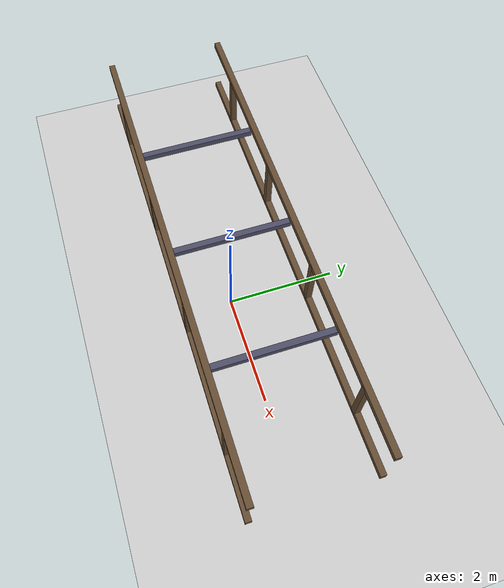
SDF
<?xml version="1.0" encoding="UTF-8"?>
<sdf version="1.9">
  <world name="truss">
    <physics type="ode">
      <max_step_size>0.004</max_step_size>
      <real_time_factor>1.0</real_time_factor>
      <real_time_update_rate>250</real_time_update_rate>
    </physics>

    <plugin filename="gz-sim-physics-system" name="gz::sim::systems::Physics">
      <engine><filename>gz-physics-dartsim-plugin</filename></engine>
    </plugin>
    <plugin filename="gz-sim-navsat-system" name="gz::sim::systems::NavSat"/>
    <plugin filename="gz-sim-scene-broadcaster-system" name="gz::sim::systems::SceneBroadcaster"/>
    <plugin filename="gz-sim-user-commands-system" name="gz::sim::systems::UserCommands"/>
    <plugin filename="gz-sim-sensors-system" name="gz::sim::systems::Sensors">
      <render_engine>ogre2</render_engine>
    </plugin>
    <plugin filename="gz-sim-imu-system" name="gz::sim::systems::Imu"/>
    <plugin filename="gz-sim-magnetometer-system" name="gz::sim::systems::Magnetometer"/>
    <plugin filename="gz-sim-air-pressure-system" name="gz::sim::systems::AirPressure"/>

    <gravity>0 0 -9.8</gravity>
    <magnetic_field>6e-06 2.3e-05 -4.2e-05</magnetic_field>
    <atmosphere type="adiabatic"/>
    <scene>
      <grid>false</grid>
      <ambient>0.4 0.4 0.4 1</ambient>
      <background>0.7 0.7 0.7 1</background>
      <shadows>true</shadows>
    </scene>

    <model name="ground_plane">
      <static>true</static>
      <link name="link">
        <collision name="collision">
          <geometry>
            <plane><normal>0 0 1</normal><size>1 1</size></plane>
          </geometry>
        </collision>
        <visual name="visual">
          <geometry>
            <plane><normal>0 0 1</normal><size>500 500</size></plane>
          </geometry>
          <material>
            <ambient>0.8 0.8 0.8 1</ambient>
            <diffuse>0.8 0.8 0.8 1</diffuse>
            <specular>0.8 0.8 0.8 1</specular>
          </material>
        </visual>
      </link>
    </model>

    <!-- CEILING TRUSS STRUCTURE -->
    <!-- Top chord - left rail running along X axis -->
    <model name="top_chord_left">
      <static>true</static>
      <pose>0 -1.0 2.5 0 0 0</pose>
      <link name="link">
        <collision name="collision"><geometry><box><size>8.0 0.1 0.1</size></box></geometry></collision>
        <visual name="visual"><geometry><box><size>8.0 0.1 0.1</size></box></geometry>
          <material><ambient>0.4 0.3 0.2 1</ambient><diffuse>0.4 0.3 0.2 1</diffuse></material>
        </visual>
      </link>
    </model>

    <!-- Top chord - right rail -->
    <model name="top_chord_right">
      <static>true</static>
      <pose>0 1.0 2.5 0 0 0</pose>
      <link name="link">
        <collision name="collision"><geometry><box><size>8.0 0.1 0.1</size></box></geometry></collision>
        <visual name="visual"><geometry><box><size>8.0 0.1 0.1</size></box></geometry>
          <material><ambient>0.4 0.3 0.2 1</ambient><diffuse>0.4 0.3 0.2 1</diffuse></material>
        </visual>
      </link>
    </model>

    <!-- Vertical posts every 2m along X -->
    <model name="post_1_left">
      <static>true</static>
      <pose>-3.0 -1.0 2.0 0 0 0</pose>
      <link name="link">
        <collision name="collision"><geometry><box><size>0.1 0.1 1.0</size></box></geometry></collision>
        <visual name="visual"><geometry><box><size>0.1 0.1 1.0</size></box></geometry>
          <material><ambient>0.4 0.3 0.2 1</ambient><diffuse>0.4 0.3 0.2 1</diffuse></material>
        </visual>
      </link>
    </model>
    <model name="post_1_right">
      <static>true</static>
      <pose>-3.0 1.0 2.0 0 0 0</pose>
      <link name="link">
        <collision name="collision"><geometry><box><size>0.1 0.1 1.0</size></box></geometry></collision>
        <visual name="visual"><geometry><box><size>0.1 0.1 1.0</size></box></geometry>
          <material><ambient>0.4 0.3 0.2 1</ambient><diffuse>0.4 0.3 0.2 1</diffuse></material>
        </visual>
      </link>
    </model>

    <model name="post_2_left">
      <static>true</static>
      <pose>-1.0 -1.0 2.0 0 0 0</pose>
      <link name="link">
        <collision name="collision"><geometry><box><size>0.1 0.1 1.0</size></box></geometry></collision>
        <visual name="visual"><geometry><box><size>0.1 0.1 1.0</size></box></geometry>
          <material><ambient>0.4 0.3 0.2 1</ambient><diffuse>0.4 0.3 0.2 1</diffuse></material>
        </visual>
      </link>
    </model>
    <model name="post_2_right">
      <static>true</static>
      <pose>-1.0 1.0 2.0 0 0 0</pose>
      <link name="link">
        <collision name="collision"><geometry><box><size>0.1 0.1 1.0</size></box></geometry></collision>
        <visual name="visual"><geometry><box><size>0.1 0.1 1.0</size></box></geometry>
          <material><ambient>0.4 0.3 0.2 1</ambient><diffuse>0.4 0.3 0.2 1</diffuse></material>
        </visual>
      </link>
    </model>

    <model name="post_3_left">
      <static>true</static>
      <pose>1.0 -1.0 2.0 0 0 0</pose>
      <link name="link">
        <collision name="collision"><geometry><box><size>0.1 0.1 1.0</size></box></geometry></collision>
        <visual name="visual"><geometry><box><size>0.1 0.1 1.0</size></box></geometry>
          <material><ambient>0.4 0.3 0.2 1</ambient><diffuse>0.4 0.3 0.2 1</diffuse></material>
        </visual>
      </link>
    </model>
    <model name="post_3_right">
      <static>true</static>
      <pose>1.0 1.0 2.0 0 0 0</pose>
      <link name="link">
        <collision name="collision"><geometry><box><size>0.1 0.1 1.0</size></box></geometry></collision>
        <visual name="visual"><geometry><box><size>0.1 0.1 1.0</size></box></geometry>
          <material><ambient>0.4 0.3 0.2 1</ambient><diffuse>0.4 0.3 0.2 1</diffuse></material>
        </visual>
      </link>
    </model>

    <model name="post_4_left">
      <static>true</static>
      <pose>3.0 -1.0 2.0 0 0 0</pose>
      <link name="link">
        <collision name="collision"><geometry><box><size>0.1 0.1 1.0</size></box></geometry></collision>
        <visual name="visual"><geometry><box><size>0.1 0.1 1.0</size></box></geometry>
          <material><ambient>0.4 0.3 0.2 1</ambient><diffuse>0.4 0.3 0.2 1</diffuse></material>
        </visual>
      </link>
    </model>
    <model name="post_4_right">
      <static>true</static>
      <pose>3.0 1.0 2.0 0 0 0</pose>
      <link name="link">
        <collision name="collision"><geometry><box><size>0.1 0.1 1.0</size></box></geometry></collision>
        <visual name="visual"><geometry><box><size>0.1 0.1 1.0</size></box></geometry>
          <material><ambient>0.4 0.3 0.2 1</ambient><diffuse>0.4 0.3 0.2 1</diffuse></material>
        </visual>
      </link>
    </model>

    <!-- Cross braces between posts -->
    <model name="cross_1">
      <static>true</static>
      <pose>-2.0 0 2.25 0 0 0</pose>
      <link name="link">
        <collision name="collision"><geometry><box><size>0.1 2.0 0.1</size></box></geometry></collision>
        <visual name="visual"><geometry><box><size>0.1 2.0 0.1</size></box></geometry>
          <material><ambient>0.3 0.3 0.4 1</ambient><diffuse>0.3 0.3 0.4 1</diffuse></material>
        </visual>
      </link>
    </model>
    <model name="cross_2">
      <static>true</static>
      <pose>0 0 2.25 0 0 0</pose>
      <link name="link">
        <collision name="collision"><geometry><box><size>0.1 2.0 0.1</size></box></geometry></collision>
        <visual name="visual"><geometry><box><size>0.1 2.0 0.1</size></box></geometry>
          <material><ambient>0.3 0.3 0.4 1</ambient><diffuse>0.3 0.3 0.4 1</diffuse></material>
        </visual>
      </link>
    </model>
    <model name="cross_3">
      <static>true</static>
      <pose>2.0 0 2.25 0 0 0</pose>
      <link name="link">
        <collision name="collision"><geometry><box><size>0.1 2.0 0.1</size></box></geometry></collision>
        <visual name="visual"><geometry><box><size>0.1 2.0 0.1</size></box></geometry>
          <material><ambient>0.3 0.3 0.4 1</ambient><diffuse>0.3 0.3 0.4 1</diffuse></material>
        </visual>
      </link>
    </model>

    <!-- Bottom chord connecting posts -->
    <model name="bottom_chord_left">
      <static>true</static>
      <pose>0 -1.0 1.5 0 0 0</pose>
      <link name="link">
        <collision name="collision"><geometry><box><size>8.0 0.1 0.1</size></box></geometry></collision>
        <visual name="visual"><geometry><box><size>8.0 0.1 0.1</size></box></geometry>
          <material><ambient>0.4 0.3 0.2 1</ambient><diffuse>0.4 0.3 0.2 1</diffuse></material>
        </visual>
      </link>
    </model>
    <model name="bottom_chord_right">
      <static>true</static>
      <pose>0 1.0 1.5 0 0 0</pose>
      <link name="link">
        <collision name="collision"><geometry><box><size>8.0 0.1 0.1</size></box></geometry></collision>
        <visual name="visual"><geometry><box><size>8.0 0.1 0.1</size></box></geometry>
          <material><ambient>0.4 0.3 0.2 1</ambient><diffuse>0.4 0.3 0.2 1</diffuse></material>
        </visual>
      </link>
    </model>

    <light name="sunUTC" type="directional">
      <pose>0 0 500 0 -0 0</pose>
      <cast_shadows>true</cast_shadows>
      <intensity>1</intensity>
      <direction>0.001 0.625 -0.78</direction>
      <diffuse>0.904 0.904 0.904 1</diffuse>
      <specular>0.271 0.271 0.271 1</specular>
      <attenuation>
        <range>2000</range>
        <linear>0</linear>
        <constant>1</constant>
        <quadratic>0</quadratic>
      </attenuation>
    </light>

    <spherical_coordinates>
      <surface_model>EARTH_WGS84</surface_model>
      <world_frame_orientation>ENU</world_frame_orientation>
      <latitude_deg>47.397971057728974</latitude_deg>
      <longitude_deg>8.546163739800146</longitude_deg>
      <elevation>0</elevation>
    </spherical_coordinates>
  </world>
</sdf>
